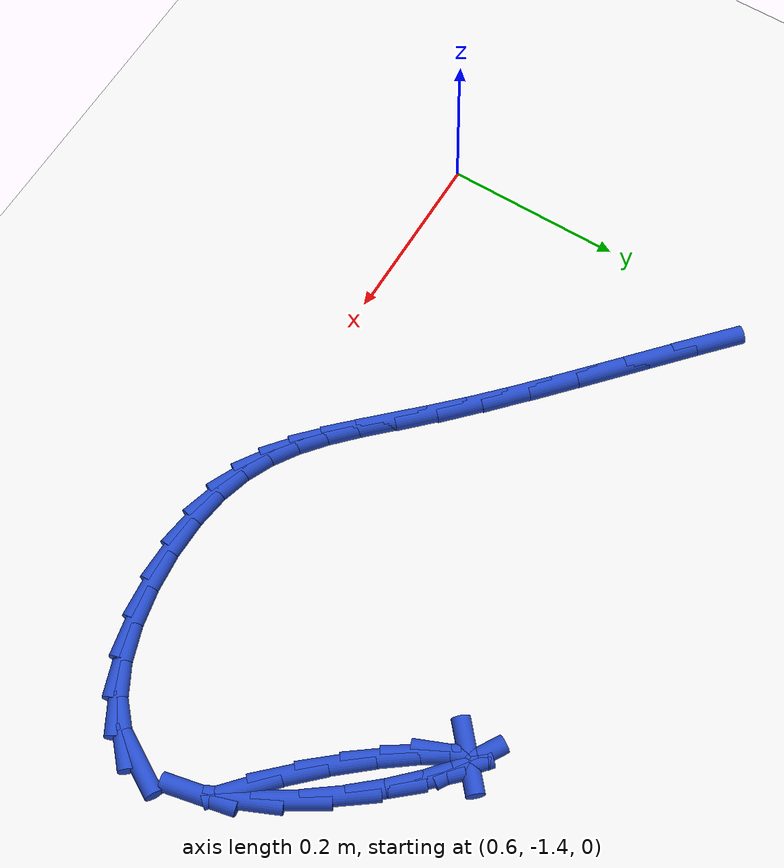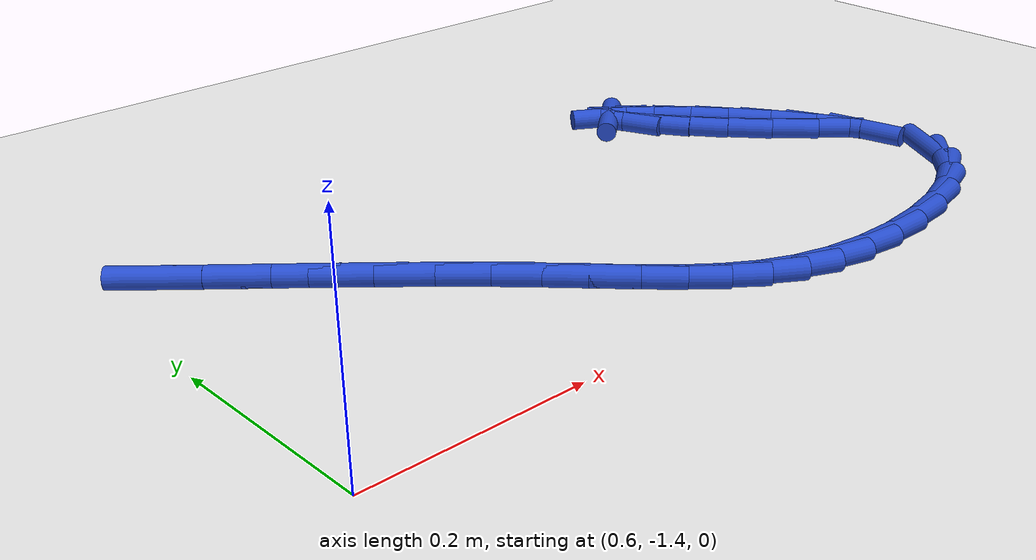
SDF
<sdf version="1.6">
 <world name="default">
  <model name="ground_plane">
   <static>1</static>
   <link name="link">
    <collision name="collision">
     <geometry><plane><normal>0 0 1</normal><size>100 100</size></plane></geometry>
     <surface><friction><ode><mu>100</mu><mu2>50</mu2></ode></friction></surface>
    </collision>
    <visual name="visual">
     <cast_shadows>0</cast_shadows>
     <geometry><plane><normal>0 0 1</normal><size>100 100</size></plane></geometry>
     <material>
      <script><uri>file://media/materials/scripts/gazebo.material</uri><name>Gazebo/WhiteGlow</name></script>
     </material>
    </visual>
   </link>
  </model>
  <model name="line">
   <link name="link_211">
    <pose>1.3223421036781076 -1.2126156421464542 0.01 0 1.57 -0.733278346065531</pose>
    <collision name="collision">
     <geometry><cylinder><radius>0.01</radius><length>0.08</length></cylinder></geometry>
    </collision>
    <visual name="visual">
     <material>
      <script><name>Gazebo/Blue</name><uri>file://media/materials/scripts/gazebo.material</uri></script>
     </material>
     <geometry><cylinder><radius>0.01</radius><length>0.08</length></cylinder></geometry>
    </visual>
   </link>
   <link name="link_212">
    <pose>1.2876169101282733 -1.18133383969785 0.01 0 1.57 -0.8088267366019832</pose>
    <collision name="collision">
     <geometry><cylinder><radius>0.01</radius><length>0.08</length></cylinder></geometry>
    </collision>
    <visual name="visual">
     <material>
      <script><name>Gazebo/Blue</name><uri>file://media/materials/scripts/gazebo.material</uri></script>
     </material>
     <geometry><cylinder><radius>0.01</radius><length>0.08</length></cylinder></geometry>
    </visual>
   </link>
   <link name="link_213">
    <pose>1.2548529114259421 -1.1469974878222327 0.01 0 1.57 -0.8697641359398242</pose>
    <collision name="collision">
     <geometry><cylinder><radius>0.01</radius><length>0.08</length></cylinder></geometry>
    </collision>
    <visual name="visual">
     <material>
      <script><name>Gazebo/Blue</name><uri>file://media/materials/scripts/gazebo.material</uri></script>
     </material>
     <geometry><cylinder><radius>0.01</radius><length>0.08</length></cylinder></geometry>
    </visual>
   </link>
   <link name="link_214">
    <pose>1.225875766968481 -1.1126665908623814 0.01 0 1.57 -0.9290260903456741</pose>
    <collision name="collision">
     <geometry><cylinder><radius>0.01</radius><length>0.08</length></cylinder></geometry>
    </collision>
    <visual name="visual">
     <material>
      <script><name>Gazebo/Blue</name><uri>file://media/materials/scripts/gazebo.material</uri></script>
     </material>
     <geometry><cylinder><radius>0.01</radius><length>0.08</length></cylinder></geometry>
    </visual>
   </link>
   <link name="link_215">
    <pose>1.2025111361532548 -1.0814011531610728 0.01 0 1.57 -1.00609992222185</pose>
    <collision name="collision">
     <geometry><cylinder><radius>0.01</radius><length>0.08</length></cylinder></geometry>
    </collision>
    <visual name="visual">
     <material>
      <script><name>Gazebo/Blue</name><uri>file://media/materials/scripts/gazebo.material</uri></script>
     </material>
     <geometry><cylinder><radius>0.01</radius><length>0.08</length></cylinder></geometry>
    </visual>
   </link>
   <link name="link_216">
    <pose>1.1865846783776284 -1.056261179061085 0.01 0 1.57 -1.175208946581107</pose>
    <collision name="collision">
     <geometry><cylinder><radius>0.01</radius><length>0.08</length></cylinder></geometry>
    </collision>
    <visual name="visual">
     <material>
      <script><name>Gazebo/Blue</name><uri>file://media/materials/scripts/gazebo.material</uri></script>
     </material>
     <geometry><cylinder><radius>0.01</radius><length>0.08</length></cylinder></geometry>
    </visual>
   </link>
   <link name="link_217">
    <pose>1.179922053038967 -1.040306672905194 0.01 0 1.57 0.7229140608456707</pose>
    <collision name="collision">
     <geometry><cylinder><radius>0.01</radius><length>0.08</length></cylinder></geometry>
    </collision>
    <visual name="visual">
     <material>
      <script><name>Gazebo/Blue</name><uri>file://media/materials/scripts/gazebo.material</uri></script>
     </material>
     <geometry><cylinder><radius>0.01</radius><length>0.08</length></cylinder></geometry>
    </visual>
   </link>
   <link name="link_218">
    <pose>1.1842500530937685 -1.036488351891206 0.01 0 1.57 -0.5354772307607525</pose>
    <collision name="collision">
     <geometry><cylinder><radius>0.01</radius><length>0.08</length></cylinder></geometry>
    </collision>
    <visual name="visual">
     <material>
      <script><name>Gazebo/Blue</name><uri>file://media/materials/scripts/gazebo.material</uri></script>
     </material>
     <geometry><cylinder><radius>0.01</radius><length>0.08</length></cylinder></geometry>
    </visual>
   </link>
   <link name="link_219">
    <pose>1.199038968626137 -1.0452625908052746 0.01 0 1.57 -0.7105902703063691</pose>
    <collision name="collision">
     <geometry><cylinder><radius>0.01</radius><length>0.08</length></cylinder></geometry>
    </collision>
    <visual name="visual">
     <material>
      <script><name>Gazebo/Blue</name><uri>file://media/materials/scripts/gazebo.material</uri></script>
     </material>
     <geometry><cylinder><radius>0.01</radius><length>0.08</length></cylinder></geometry>
    </visual>
   </link>
   <link name="link_220">
    <pose>1.22151222530631 -1.0646020763916244 0.01 0 1.57 -0.7942288074516707</pose>
    <collision name="collision">
     <geometry><cylinder><radius>0.01</radius><length>0.08</length></cylinder></geometry>
    </collision>
    <visual name="visual">
     <material>
      <script><name>Gazebo/Blue</name><uri>file://media/materials/scripts/gazebo.material</uri></script>
     </material>
     <geometry><cylinder><radius>0.01</radius><length>0.08</length></cylinder></geometry>
    </visual>
   </link>
   <link name="link_221">
    <pose>1.2487963100664352 -1.0923723391356932 0.01 0 1.57 -0.8618066469489338</pose>
    <collision name="collision">
     <geometry><cylinder><radius>0.01</radius><length>0.08</length></cylinder></geometry>
    </collision>
    <visual name="visual">
     <material>
      <script><name>Gazebo/Blue</name><uri>file://media/materials/scripts/gazebo.material</uri></script>
     </material>
     <geometry><cylinder><radius>0.01</radius><length>0.08</length></cylinder></geometry>
    </visual>
   </link>
   <link name="link_222">
    <pose>1.2780177098386603 -1.126438909522919 0.01 0 1.57 -0.9337905786592668</pose>
    <collision name="collision">
     <geometry><cylinder><radius>0.01</radius><length>0.08</length></cylinder></geometry>
    </collision>
    <visual name="visual">
     <material>
      <script><name>Gazebo/Blue</name><uri>file://media/materials/scripts/gazebo.material</uri></script>
     </material>
     <geometry><cylinder><radius>0.01</radius><length>0.08</length></cylinder></geometry>
    </visual>
   </link>
   <link name="link_223">
    <pose>1.3063029115551328 -1.1646673180387388 0.01 0 1.57 -1.0245156261751238</pose>
    <collision name="collision">
     <geometry><cylinder><radius>0.01</radius><length>0.08</length></cylinder></geometry>
    </collision>
    <visual name="visual">
     <material>
      <script><name>Gazebo/Blue</name><uri>file://media/materials/scripts/gazebo.material</uri></script>
     </material>
     <geometry><cylinder><radius>0.01</radius><length>0.08</length></cylinder></geometry>
    </visual>
   </link>
   <link name="link_224">
    <pose>1.3307784021480005 -1.2049230951685903 0.01 0 1.57 -1.1536455219526176</pose>
    <collision name="collision">
     <geometry><cylinder><radius>0.01</radius><length>0.08</length></cylinder></geometry>
    </collision>
    <visual name="visual">
     <material>
      <script><name>Gazebo/Blue</name><uri>file://media/materials/scripts/gazebo.material</uri></script>
     </material>
     <geometry><cylinder><radius>0.01</radius><length>0.08</length></cylinder></geometry>
    </visual>
   </link>
   <link name="link_225">
    <pose>1.348570668549411 -1.2450717713979114 0.01 0 1.57 -1.35686527464067</pose>
    <collision name="collision">
     <geometry><cylinder><radius>0.01</radius><length>0.08</length></cylinder></geometry>
    </collision>
    <visual name="visual">
     <material>
      <script><name>Gazebo/Blue</name><uri>file://media/materials/scripts/gazebo.material</uri></script>
     </material>
     <geometry><cylinder><radius>0.01</radius><length>0.08</length></cylinder></geometry>
    </visual>
   </link>
   <link name="link_227">
    <pose>1.3528206442162902 -1.3166003843777012 0.01 0 1.57 1.0584587472555231</pose>
    <collision name="collision">
     <geometry><cylinder><radius>0.01</radius><length>0.08</length></cylinder></geometry>
    </collision>
    <visual name="visual">
     <material>
      <script><name>Gazebo/Blue</name><uri>file://media/materials/scripts/gazebo.material</uri></script>
     </material>
     <geometry><cylinder><radius>0.01</radius><length>0.08</length></cylinder></geometry>
    </visual>
   </link>
   <link name="link_228">
    <pose>1.3367820285186494 -1.345116941199868 0.01 0 1.57 0.7365555714432577</pose>
    <collision name="collision">
     <geometry><cylinder><radius>0.01</radius><length>0.08</length></cylinder></geometry>
    </collision>
    <visual name="visual">
     <material>
      <script><name>Gazebo/Blue</name><uri>file://media/materials/scripts/gazebo.material</uri></script>
     </material>
     <geometry><cylinder><radius>0.01</radius><length>0.08</length></cylinder></geometry>
    </visual>
   </link>
   <link name="link_229">
    <pose>1.3108959816448302 -1.368590231195348 0.01 0 1.57 0.5050279396285855</pose>
    <collision name="collision">
     <geometry><cylinder><radius>0.01</radius><length>0.08</length></cylinder></geometry>
    </collision>
    <visual name="visual">
     <material>
      <script><name>Gazebo/Blue</name><uri>file://media/materials/scripts/gazebo.material</uri></script>
     </material>
     <geometry><cylinder><radius>0.01</radius><length>0.08</length></cylinder></geometry>
    </visual>
   </link>
   <link name="link_230">
    <pose>1.277412927227921 -1.387101305587923 0.01 0 1.57 0.3375816196464062</pose>
    <collision name="collision">
     <geometry><cylinder><radius>0.01</radius><length>0.08</length></cylinder></geometry>
    </collision>
    <visual name="visual">
     <material>
      <script><name>Gazebo/Blue</name><uri>file://media/materials/scripts/gazebo.material</uri></script>
     </material>
     <geometry><cylinder><radius>0.01</radius><length>0.08</length></cylinder></geometry>
    </visual>
   </link>
   <link name="link_231">
    <pose>1.2385832889010104 -1.4007312156013756 0.01 0 1.57 0.20757189079439758</pose>
    <collision name="collision">
     <geometry><cylinder><radius>0.01</radius><length>0.08</length></cylinder></geometry>
    </collision>
    <visual name="visual">
     <material>
      <script><name>Gazebo/Blue</name><uri>file://media/materials/scripts/gazebo.material</uri></script>
     </material>
     <geometry><cylinder><radius>0.01</radius><length>0.08</length></cylinder></geometry>
    </visual>
   </link>
   <link name="link_232">
    <pose>1.1966574902971863 -1.409561012459487 0.01 0 1.57 0.09581483774514621</pose>
    <collision name="collision">
     <geometry><cylinder><radius>0.01</radius><length>0.08</length></cylinder></geometry>
    </collision>
    <visual name="visual">
     <material>
      <script><name>Gazebo/Blue</name><uri>file://media/materials/scripts/gazebo.material</uri></script>
     </material>
     <geometry><cylinder><radius>0.01</radius><length>0.08</length></cylinder></geometry>
    </visual>
   </link>
   <link name="link_233">
    <pose>1.1538859550495386 -1.4136717473860394 0.01 0 1.57 -0.012745646595396952</pose>
    <collision name="collision">
     <geometry><cylinder><radius>0.01</radius><length>0.08</length></cylinder></geometry>
    </collision>
    <visual name="visual">
     <material>
      <script><name>Gazebo/Blue</name><uri>file://media/materials/scripts/gazebo.material</uri></script>
     </material>
     <geometry><cylinder><radius>0.01</radius><length>0.08</length></cylinder></geometry>
    </visual>
   </link>
   <link name="link_234">
    <pose>1.112519106791153 -1.413144471604815 0.01 0 1.57 -0.13393551371725362</pose>
    <collision name="collision">
     <geometry><cylinder><radius>0.01</radius><length>0.08</length></cylinder></geometry>
    </collision>
    <visual name="visual">
     <material>
      <script><name>Gazebo/Blue</name><uri>file://media/materials/scripts/gazebo.material</uri></script>
     </material>
     <geometry><cylinder><radius>0.01</radius><length>0.08</length></cylinder></geometry>
    </visual>
   </link>
   <link name="link_235">
    <pose>1.0747927154253605 -1.4080611353983432 0.01 0 1.57 -0.27960517617857183</pose>
    <collision name="collision">
     <geometry><cylinder><radius>0.01</radius><length>0.08</length></cylinder></geometry>
    </collision>
    <visual name="visual">
     <material>
      <script><name>Gazebo/Blue</name><uri>file://media/materials/scripts/gazebo.material</uri></script>
     </material>
     <geometry><cylinder><radius>0.01</radius><length>0.08</length></cylinder></geometry>
    </visual>
   </link>
   <link name="link_236">
    <pose>1.0417591066033878 -1.3985762975880363 0.01 0 1.57 -0.4344632592635277</pose>
    <collision name="collision">
     <geometry><cylinder><radius>0.01</radius><length>0.08</length></cylinder></geometry>
    </collision>
    <visual name="visual">
     <material>
      <script><name>Gazebo/Blue</name><uri>file://media/materials/scripts/gazebo.material</uri></script>
     </material>
     <geometry><cylinder><radius>0.01</radius><length>0.08</length></cylinder></geometry>
    </visual>
   </link>
   <link name="link_237">
    <pose>1.01243594903599 -1.3849693504780134 0.01 0 1.57 -0.5769023577776702</pose>
    <collision name="collision">
     <geometry><cylinder><radius>0.01</radius><length>0.08</length></cylinder></geometry>
    </collision>
    <visual name="visual">
     <material>
      <script><name>Gazebo/Blue</name><uri>file://media/materials/scripts/gazebo.material</uri></script>
     </material>
     <geometry><cylinder><radius>0.01</radius><length>0.08</length></cylinder></geometry>
    </visual>
   </link>
   <link name="link_238">
    <pose>0.985640181582061 -1.3675320018669561 0.01 0 1.57 -0.6892996682917366</pose>
    <collision name="collision">
     <geometry><cylinder><radius>0.01</radius><length>0.08</length></cylinder></geometry>
    </collision>
    <visual name="visual">
     <material>
      <script><name>Gazebo/Blue</name><uri>file://media/materials/scripts/gazebo.material</uri></script>
     </material>
     <geometry><cylinder><radius>0.01</radius><length>0.08</length></cylinder></geometry>
    </visual>
   </link>
   <link name="link_239">
    <pose>0.9601887431004948 -1.3465559595535468 0.01 0 1.57 -0.7638488135684528</pose>
    <collision name="collision">
     <geometry><cylinder><radius>0.01</radius><length>0.08</length></cylinder></geometry>
    </collision>
    <visual name="visual">
     <material>
      <script><name>Gazebo/Blue</name><uri>file://media/materials/scripts/gazebo.material</uri></script>
     </material>
     <geometry><cylinder><radius>0.01</radius><length>0.08</length></cylinder></geometry>
    </visual>
   </link>
   <link name="link_240">
    <pose>0.9348985724501866 -1.3223329313364687 0.01 0 1.57 -0.8015930081161602</pose>
    <collision name="collision">
     <geometry><cylinder><radius>0.01</radius><length>0.08</length></cylinder></geometry>
    </collision>
    <visual name="visual">
     <material>
      <script><name>Gazebo/Blue</name><uri>file://media/materials/scripts/gazebo.material</uri></script>
     </material>
     <geometry><cylinder><radius>0.01</radius><length>0.08</length></cylinder></geometry>
    </visual>
   </link>
   <link name="link_241">
    <pose>0.9085866084900299 -1.295154625014403 0.01 0 1.57 -0.8080996748314603</pose>
    <collision name="collision">
     <geometry><cylinder><radius>0.01</radius><length>0.08</length></cylinder></geometry>
    </collision>
    <visual name="visual">
     <material>
      <script><name>Gazebo/Blue</name><uri>file://media/materials/scripts/gazebo.material</uri></script>
     </material>
     <geometry><cylinder><radius>0.01</radius><length>0.08</length></cylinder></geometry>
    </visual>
   </link>
   <link name="link_242">
    <pose>0.8800697900789196 -1.2653127483860336 0.01 0 1.57 -0.7903071282397377</pose>
    <collision name="collision">
     <geometry><cylinder><radius>0.01</radius><length>0.08</length></cylinder></geometry>
    </collision>
    <visual name="visual">
     <material>
      <script><name>Gazebo/Blue</name><uri>file://media/materials/scripts/gazebo.material</uri></script>
     </material>
     <geometry><cylinder><radius>0.01</radius><length>0.08</length></cylinder></geometry>
    </visual>
   </link>
   <link name="link_243">
    <pose>0.8481715130697953 -1.233099748846278 0.01 0 1.57 -0.7636493361173575</pose>
    <collision name="collision">
     <geometry><cylinder><radius>0.01</radius><length>0.08</length></cylinder></geometry>
    </collision>
    <visual name="visual">
     <material>
      <script><name>Gazebo/Blue</name><uri>file://media/materials/scripts/gazebo.material</uri></script>
     </material>
     <geometry><cylinder><radius>0.01</radius><length>0.08</length></cylinder></geometry>
    </visual>
   </link>
   <link name="link_244">
    <pose>0.81244174703668 -1.1988912969099697 0.01 0 1.57 -0.745595837253905</pose>
    <collision name="collision">
     <geometry><cylinder><radius>0.01</radius><length>0.08</length></cylinder></geometry>
    </collision>
    <visual name="visual">
     <material>
      <script><name>Gazebo/Blue</name><uri>file://media/materials/scripts/gazebo.material</uri></script>
     </material>
     <geometry><cylinder><radius>0.01</radius><length>0.08</length></cylinder></geometry>
    </visual>
   </link>
   <link name="link_245">
    <pose>0.7738130607914446 -1.1632214286078186 0.01 0 1.57 -0.7353152611634759</pose>
    <collision name="collision">
     <geometry><cylinder><radius>0.01</radius><length>0.08</length></cylinder></geometry>
    </collision>
    <visual name="visual">
     <material>
      <script><name>Gazebo/Blue</name><uri>file://media/materials/scripts/gazebo.material</uri></script>
     </material>
     <geometry><cylinder><radius>0.01</radius><length>0.08</length></cylinder></geometry>
    </visual>
   </link>
   <link name="link_246">
    <pose>0.7333729663930161 -1.1266419274613346 0.01 0 1.57 -0.7313335208096827</pose>
    <collision name="collision">
     <geometry><cylinder><radius>0.01</radius><length>0.08</length></cylinder></geometry>
    </collision>
    <visual name="visual">
     <material>
      <script><name>Gazebo/Blue</name><uri>file://media/materials/scripts/gazebo.material</uri></script>
     </material>
     <geometry><cylinder><radius>0.01</radius><length>0.08</length></cylinder></geometry>
    </visual>
   </link>
   <link name="link_247">
    <pose>0.6922089759003216 -1.089704576992027 0.01 0 1.57 -0.7331275339881723</pose>
    <collision name="collision">
     <geometry><cylinder><radius>0.01</radius><length>0.08</length></cylinder></geometry>
    </collision>
    <visual name="visual">
     <material>
      <script><name>Gazebo/Blue</name><uri>file://media/materials/scripts/gazebo.material</uri></script>
     </material>
     <geometry><cylinder><radius>0.01</radius><length>0.08</length></cylinder></geometry>
    </visual>
   </link>
   <link name="link_248">
    <pose>0.65140860137229 -1.052961160721407 0.01 0 1.57 -0.7409459283869895</pose>
    <collision name="collision">
     <geometry><cylinder><radius>0.01</radius><length>0.08</length></cylinder></geometry>
    </collision>
    <visual name="visual">
     <material>
      <script><name>Gazebo/Blue</name><uri>file://media/materials/scripts/gazebo.material</uri></script>
     </material>
     <geometry><cylinder><radius>0.01</radius><length>0.08</length></cylinder></geometry>
    </visual>
   </link>
  </model>
 </world>
</sdf>
